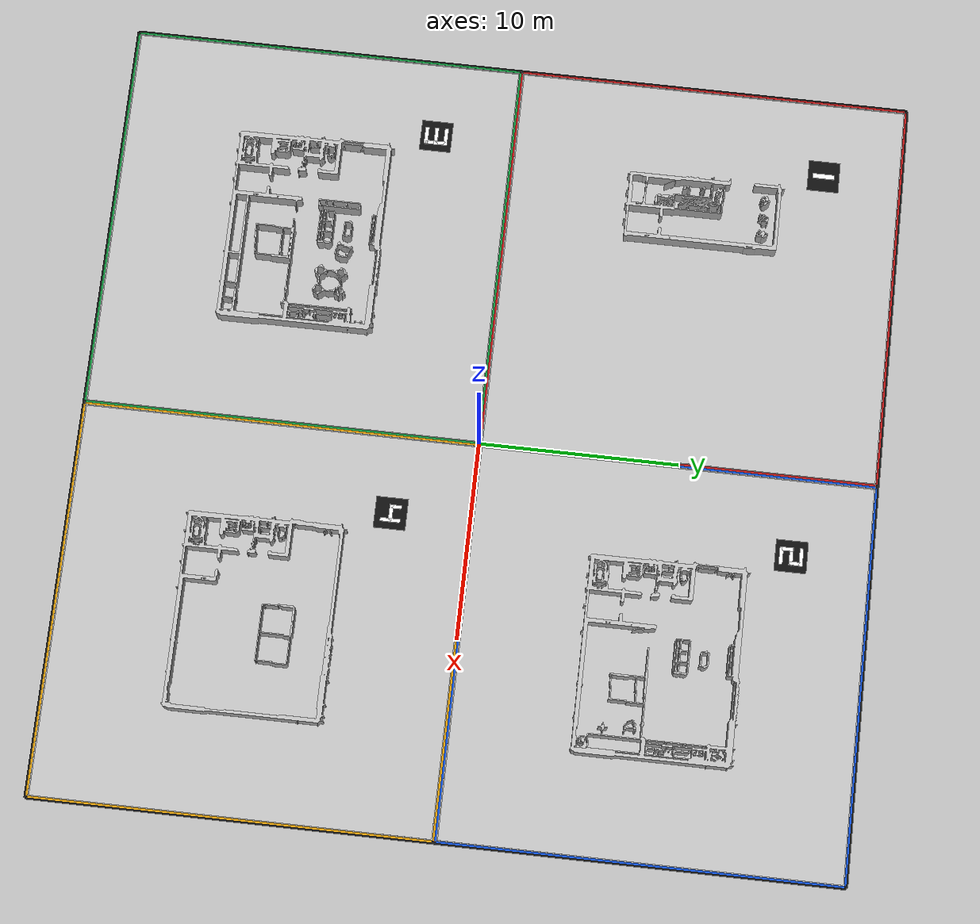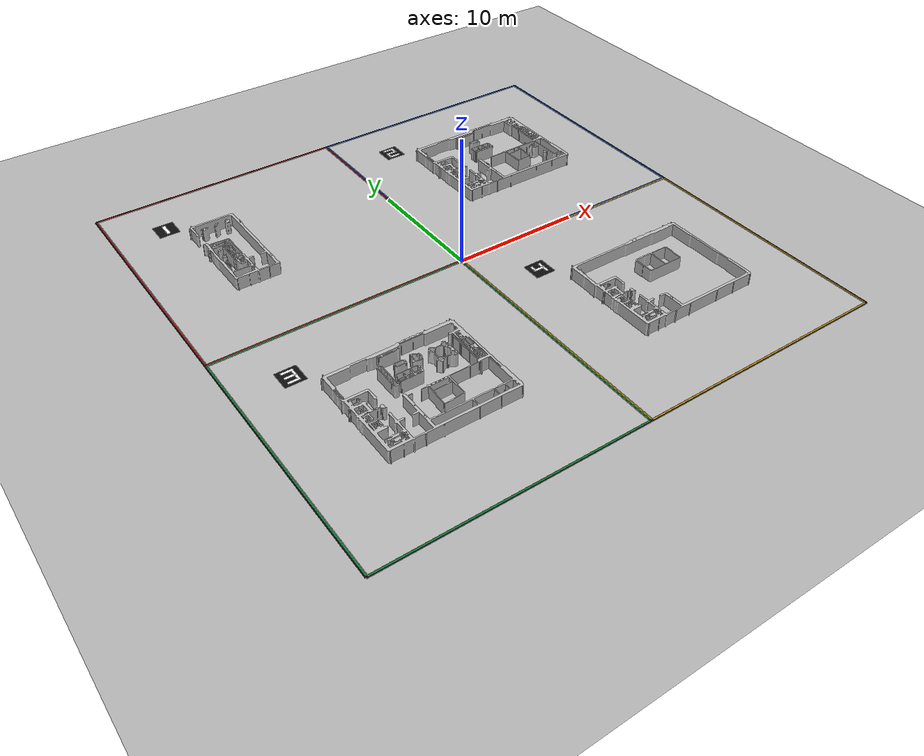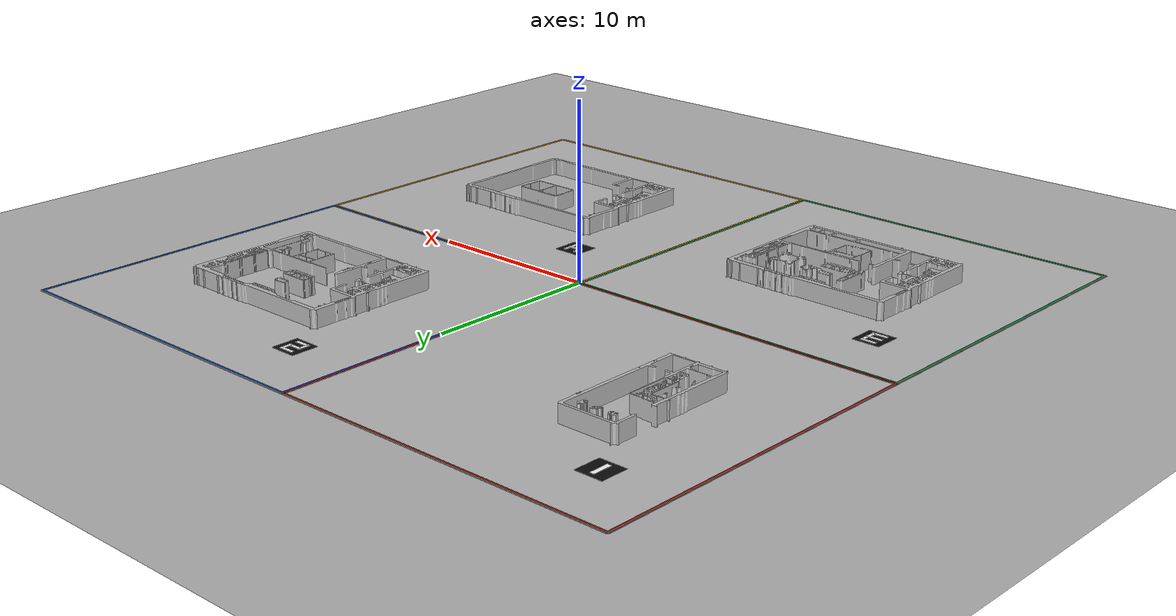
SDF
<?xml version="1.0" ?>
<sdf version="1.6">
  <world name="drawn_model_world">
    <gravity>0 0 -9.81</gravity>
    <physics name="default_physics" type="ode">
      <real_time_update_rate>1000</real_time_update_rate>
      <max_step_size>0.001</max_step_size>
      <real_time_factor>1</real_time_factor>
    </physics>

    <!-- Required by the simulation-only ground-truth localization backend. -->
    <plugin name="gazebo_ros_state" filename="libgazebo_ros_state.so">
      <ros>
        <namespace>/gazebo</namespace>
      </ros>
      <update_rate>50.0</update_rate>
    </plugin>

    <!-- Low-latency camera motion for the Web Gazebo view. The regular
         /gazebo/set_model_state service remains available as a fallback. -->
    <plugin name="topdown_camera_control" filename="libtopdown_camera_control_plugin.so">
      <model_name>topdown_camera</model_name>
      <topic_name>/open_delivery/topdown_camera/pose</topic_name>
    </plugin>

    <light name="sun" type="directional">
      <cast_shadows>true</cast_shadows>
      <pose>0 0 100 0 0 0</pose>
      <diffuse>0.8 0.8 0.8 1</diffuse>
      <specular>0.2 0.2 0.2 1</specular>
      <attenuation>
        <range>1000</range>
        <constant>0.9</constant>
        <linear>0.01</linear>
        <quadratic>0.001</quadratic>
      </attenuation>
      <direction>-0.5 0.1 -0.9</direction>
    </light>

    <model name="ground_plane">
      <static>true</static>
      <link name="link">
        <collision name="collision">
          <geometry>
            <plane>
              <normal>0 0 1</normal>
              <size>100 100</size>
            </plane>
          </geometry>
          <surface>
            <friction>
              <ode>
                <mu>100</mu>
                <mu2>50</mu2>
              </ode>
            </friction>
          </surface>
        </collision>
        <visual name="visual">
          <geometry>
            <plane>
              <normal>0 0 1</normal>
              <size>100 100</size>
            </plane>
          </geometry>
          <material>
            <ambient>0.3 0.3 0.3 1</ambient>
            <diffuse>0.7 0.7 0.7 1</diffuse>
            <specular>0.1 0.1 0.1 1</specular>
          </material>
        </visual>
      </link>
    </model>

    <model name="test_area_outline">
      <static>true</static>
      <link name="outline_link">
        <visual name="zone_1_fill">
          <pose>-10 10 0.003 0 0 0</pose>
          <geometry>
            <box>
              <size>19.7 19.7 0.006</size>
            </box>
          </geometry>
          <material>
            <script>
              <uri>model://test_101/materials/scripts</uri>
              <uri>model://test_101/materials/textures</uri>
              <name>OpenDelivery/Floor/test_101</name>
            </script>
          </material>
        </visual>
        <visual name="zone_2_fill">
          <pose>10 10 0.003 0 0 0</pose>
          <geometry>
            <box>
              <size>19.7 19.7 0.006</size>
            </box>
          </geometry>
          <material>
            <script>
              <uri>model://test_102/materials/scripts</uri>
              <uri>model://test_102/materials/textures</uri>
              <name>OpenDelivery/Floor/test_102</name>
            </script>
          </material>
        </visual>
        <visual name="zone_3_fill">
          <pose>-10 -10 0.003 0 0 0</pose>
          <geometry>
            <box>
              <size>19.7 19.7 0.006</size>
            </box>
          </geometry>
          <material>
            <script>
              <uri>model://test_103/materials/scripts</uri>
              <uri>model://test_103/materials/textures</uri>
              <name>OpenDelivery/Floor/test_103</name>
            </script>
          </material>
        </visual>
        <visual name="zone_4_fill">
          <pose>10 -10 0.003 0 0 0</pose>
          <geometry>
            <box>
              <size>19.7 19.7 0.006</size>
            </box>
          </geometry>
          <material>
            <script>
              <uri>model://test_104/materials/scripts</uri>
              <uri>model://test_104/materials/textures</uri>
              <name>OpenDelivery/Floor/test_104</name>
            </script>
          </material>
        </visual>

        <visual name="zone_1_top_border">
          <pose>-10 19.95 0.012 0 0 0</pose>
          <geometry><box><size>19.8 0.1 0.02</size></box></geometry>
          <material><ambient>0.7 0.08 0.08 1</ambient><diffuse>0.7 0.08 0.08 1</diffuse></material>
        </visual>
        <visual name="zone_1_bottom_border">
          <pose>-10 0.05 0.012 0 0 0</pose>
          <geometry><box><size>19.8 0.1 0.02</size></box></geometry>
          <material><ambient>0.7 0.08 0.08 1</ambient><diffuse>0.7 0.08 0.08 1</diffuse></material>
        </visual>
        <visual name="zone_1_left_border">
          <pose>-19.95 10 0.012 0 0 0</pose>
          <geometry><box><size>0.1 19.8 0.02</size></box></geometry>
          <material><ambient>0.7 0.08 0.08 1</ambient><diffuse>0.7 0.08 0.08 1</diffuse></material>
        </visual>
        <visual name="zone_1_right_border">
          <pose>-0.05 10 0.012 0 0 0</pose>
          <geometry><box><size>0.1 19.8 0.02</size></box></geometry>
          <material><ambient>0.7 0.08 0.08 1</ambient><diffuse>0.7 0.08 0.08 1</diffuse></material>
        </visual>

        <visual name="zone_2_top_border">
          <pose>10 19.95 0.012 0 0 0</pose>
          <geometry><box><size>19.8 0.1 0.02</size></box></geometry>
          <material><ambient>0.05 0.3 0.8 1</ambient><diffuse>0.05 0.3 0.8 1</diffuse></material>
        </visual>
        <visual name="zone_2_bottom_border">
          <pose>10 0.05 0.012 0 0 0</pose>
          <geometry><box><size>19.8 0.1 0.02</size></box></geometry>
          <material><ambient>0.05 0.3 0.8 1</ambient><diffuse>0.05 0.3 0.8 1</diffuse></material>
        </visual>
        <visual name="zone_2_left_border">
          <pose>0.05 10 0.012 0 0 0</pose>
          <geometry><box><size>0.1 19.8 0.02</size></box></geometry>
          <material><ambient>0.05 0.3 0.8 1</ambient><diffuse>0.05 0.3 0.8 1</diffuse></material>
        </visual>
        <visual name="zone_2_right_border">
          <pose>19.95 10 0.012 0 0 0</pose>
          <geometry><box><size>0.1 19.8 0.02</size></box></geometry>
          <material><ambient>0.05 0.3 0.8 1</ambient><diffuse>0.05 0.3 0.8 1</diffuse></material>
        </visual>

        <visual name="zone_3_top_border">
          <pose>-10 -0.05 0.012 0 0 0</pose>
          <geometry><box><size>19.8 0.1 0.02</size></box></geometry>
          <material><ambient>0.05 0.55 0.22 1</ambient><diffuse>0.05 0.55 0.22 1</diffuse></material>
        </visual>
        <visual name="zone_3_bottom_border">
          <pose>-10 -19.95 0.012 0 0 0</pose>
          <geometry><box><size>19.8 0.1 0.02</size></box></geometry>
          <material><ambient>0.05 0.55 0.22 1</ambient><diffuse>0.05 0.55 0.22 1</diffuse></material>
        </visual>
        <visual name="zone_3_left_border">
          <pose>-19.95 -10 0.012 0 0 0</pose>
          <geometry><box><size>0.1 19.8 0.02</size></box></geometry>
          <material><ambient>0.05 0.55 0.22 1</ambient><diffuse>0.05 0.55 0.22 1</diffuse></material>
        </visual>
        <visual name="zone_3_right_border">
          <pose>-0.05 -10 0.012 0 0 0</pose>
          <geometry><box><size>0.1 19.8 0.02</size></box></geometry>
          <material><ambient>0.05 0.55 0.22 1</ambient><diffuse>0.05 0.55 0.22 1</diffuse></material>
        </visual>

        <visual name="zone_4_top_border">
          <pose>10 -0.05 0.012 0 0 0</pose>
          <geometry><box><size>19.8 0.1 0.02</size></box></geometry>
          <material><ambient>0.82 0.58 0.02 1</ambient><diffuse>0.82 0.58 0.02 1</diffuse></material>
        </visual>
        <visual name="zone_4_bottom_border">
          <pose>10 -19.95 0.012 0 0 0</pose>
          <geometry><box><size>19.8 0.1 0.02</size></box></geometry>
          <material><ambient>0.82 0.58 0.02 1</ambient><diffuse>0.82 0.58 0.02 1</diffuse></material>
        </visual>
        <visual name="zone_4_left_border">
          <pose>0.05 -10 0.012 0 0 0</pose>
          <geometry><box><size>0.1 19.8 0.02</size></box></geometry>
          <material><ambient>0.82 0.58 0.02 1</ambient><diffuse>0.82 0.58 0.02 1</diffuse></material>
        </visual>
        <visual name="zone_4_right_border">
          <pose>19.95 -10 0.012 0 0 0</pose>
          <geometry><box><size>0.1 19.8 0.02</size></box></geometry>
          <material><ambient>0.82 0.58 0.02 1</ambient><diffuse>0.82 0.58 0.02 1</diffuse></material>
        </visual>

        <visual name="north_edge">
          <pose>0 20 0.01 0 0 0</pose>
          <geometry>
            <box>
              <size>40 0.15 0.02</size>
            </box>
          </geometry>
          <material>
            <ambient>0.08 0.08 0.08 1</ambient>
            <diffuse>0.08 0.08 0.08 1</diffuse>
          </material>
        </visual>
        <visual name="south_edge">
          <pose>0 -20 0.01 0 0 0</pose>
          <geometry>
            <box>
              <size>40 0.15 0.02</size>
            </box>
          </geometry>
          <material>
            <ambient>0.08 0.08 0.08 1</ambient>
            <diffuse>0.08 0.08 0.08 1</diffuse>
          </material>
        </visual>
        <visual name="east_edge">
          <pose>20 0 0.01 0 0 0</pose>
          <geometry>
            <box>
              <size>0.15 40 0.02</size>
            </box>
          </geometry>
          <material>
            <ambient>0.08 0.08 0.08 1</ambient>
            <diffuse>0.08 0.08 0.08 1</diffuse>
          </material>
        </visual>
        <visual name="west_edge">
          <pose>-20 0 0.01 0 0 0</pose>
          <geometry>
            <box>
              <size>0.15 40 0.02</size>
            </box>
          </geometry>
          <material>
            <ambient>0.08 0.08 0.08 1</ambient>
            <diffuse>0.08 0.08 0.08 1</diffuse>
          </material>
        </visual>
        <visual name="center_x_axis">
          <pose>0 0 0.008 0 0 0</pose>
          <geometry>
            <box>
              <size>40 0.04 0.016</size>
            </box>
          </geometry>
          <material>
            <ambient>0.85 0.2 0.2 1</ambient>
            <diffuse>0.85 0.2 0.2 1</diffuse>
          </material>
        </visual>
        <visual name="center_y_axis">
          <pose>0 0 0.008 0 0 0</pose>
          <geometry>
            <box>
              <size>0.04 40 0.016</size>
            </box>
          </geometry>
          <material>
            <ambient>0.85 0.2 0.2 1</ambient>
            <diffuse>0.85 0.2 0.2 1</diffuse>
          </material>
        </visual>
      </link>
    </model>

    <include>
      <uri>model://test_101</uri>
      <name>test_101</name>
      <pose>-10 10 0 0 0 0</pose>
    </include>
    <include>
      <uri>model://test_102</uri>
      <name>test_102</name>
      <pose>10 10 0 0 0 0</pose>
    </include>
    <include>
      <uri>model://test_103</uri>
      <name>test_103</name>
      <pose>-10 -10 0 0 0 0</pose>
    </include>
    <include>
      <uri>model://test_104</uri>
      <name>test_104</name>
      <pose>10 -10 0 0 0 0</pose>
    </include>

    <model name="label_1">
      <static>true</static>
      <pose>-16 16 0 0 0 0</pose>
      <link name="label_link">
        <visual name="plate">
          <pose>0 0 0.005 0 0 0</pose>
          <geometry>
            <box>
              <size>1.6 1.6 0.01</size>
            </box>
          </geometry>
          <material>
            <ambient>0.05 0.05 0.05 1</ambient>
            <diffuse>0.05 0.05 0.05 1</diffuse>
          </material>
        </visual>
        <visual name="digit">
          <pose>0 0 0.02 0 0 0</pose>
          <geometry>
            <box>
              <size>0.25 1.1 0.02</size>
            </box>
          </geometry>
          <material>
            <ambient>1 1 1 1</ambient>
            <diffuse>1 1 1 1</diffuse>
          </material>
        </visual>
      </link>
    </model>

    <model name="label_2">
      <static>true</static>
      <pose>4 16 0 0 0 0</pose>
      <link name="label_link">
        <visual name="plate">
          <pose>0 0 0.005 0 0 0</pose>
          <geometry>
            <box>
              <size>1.6 1.6 0.01</size>
            </box>
          </geometry>
          <material>
            <ambient>0.05 0.05 0.05 1</ambient>
            <diffuse>0.05 0.05 0.05 1</diffuse>
          </material>
        </visual>
        <visual name="top">
          <pose>0 0.5 0.02 0 0 0</pose>
          <geometry><box><size>0.9 0.18 0.02</size></box></geometry>
          <material><ambient>1 1 1 1</ambient><diffuse>1 1 1 1</diffuse></material>
        </visual>
        <visual name="mid">
          <pose>0 0 0.02 0 0 0</pose>
          <geometry><box><size>0.9 0.18 0.02</size></box></geometry>
          <material><ambient>1 1 1 1</ambient><diffuse>1 1 1 1</diffuse></material>
        </visual>
        <visual name="bottom">
          <pose>0 -0.5 0.02 0 0 0</pose>
          <geometry><box><size>0.9 0.18 0.02</size></box></geometry>
          <material><ambient>1 1 1 1</ambient><diffuse>1 1 1 1</diffuse></material>
        </visual>
        <visual name="upper_right">
          <pose>0.35 0.22 0.02 0 0 0</pose>
          <geometry><box><size>0.18 0.56 0.02</size></box></geometry>
          <material><ambient>1 1 1 1</ambient><diffuse>1 1 1 1</diffuse></material>
        </visual>
        <visual name="lower_left">
          <pose>-0.35 -0.22 0.02 0 0 0</pose>
          <geometry><box><size>0.18 0.56 0.02</size></box></geometry>
          <material><ambient>1 1 1 1</ambient><diffuse>1 1 1 1</diffuse></material>
        </visual>
      </link>
    </model>

    <model name="label_3">
      <static>true</static>
      <pose>-16 -4 0 0 0 0</pose>
      <link name="label_link">
        <visual name="plate">
          <pose>0 0 0.005 0 0 0</pose>
          <geometry>
            <box>
              <size>1.6 1.6 0.01</size>
            </box>
          </geometry>
          <material>
            <ambient>0.05 0.05 0.05 1</ambient>
            <diffuse>0.05 0.05 0.05 1</diffuse>
          </material>
        </visual>
        <visual name="top">
          <pose>0 0.5 0.02 0 0 0</pose>
          <geometry><box><size>0.9 0.18 0.02</size></box></geometry>
          <material><ambient>1 1 1 1</ambient><diffuse>1 1 1 1</diffuse></material>
        </visual>
        <visual name="mid">
          <pose>0 0 0.02 0 0 0</pose>
          <geometry><box><size>0.9 0.18 0.02</size></box></geometry>
          <material><ambient>1 1 1 1</ambient><diffuse>1 1 1 1</diffuse></material>
        </visual>
        <visual name="bottom">
          <pose>0 -0.5 0.02 0 0 0</pose>
          <geometry><box><size>0.9 0.18 0.02</size></box></geometry>
          <material><ambient>1 1 1 1</ambient><diffuse>1 1 1 1</diffuse></material>
        </visual>
        <visual name="upper_right">
          <pose>0.35 0.22 0.02 0 0 0</pose>
          <geometry><box><size>0.18 0.56 0.02</size></box></geometry>
          <material><ambient>1 1 1 1</ambient><diffuse>1 1 1 1</diffuse></material>
        </visual>
        <visual name="lower_right">
          <pose>0.35 -0.22 0.02 0 0 0</pose>
          <geometry><box><size>0.18 0.56 0.02</size></box></geometry>
          <material><ambient>1 1 1 1</ambient><diffuse>1 1 1 1</diffuse></material>
        </visual>
      </link>
    </model>

    <model name="label_4">
      <static>true</static>
      <pose>4 -4 0 0 0 0</pose>
      <link name="label_link">
        <visual name="plate">
          <pose>0 0 0.005 0 0 0</pose>
          <geometry>
            <box>
              <size>1.6 1.6 0.01</size>
            </box>
          </geometry>
          <material>
            <ambient>0.05 0.05 0.05 1</ambient>
            <diffuse>0.05 0.05 0.05 1</diffuse>
          </material>
        </visual>
        <visual name="mid">
          <pose>0 0 0.02 0 0 0</pose>
          <geometry><box><size>0.9 0.18 0.02</size></box></geometry>
          <material><ambient>1 1 1 1</ambient><diffuse>1 1 1 1</diffuse></material>
        </visual>
        <visual name="upper_left">
          <pose>-0.35 0.22 0.02 0 0 0</pose>
          <geometry><box><size>0.18 0.56 0.02</size></box></geometry>
          <material><ambient>1 1 1 1</ambient><diffuse>1 1 1 1</diffuse></material>
        </visual>
        <visual name="upper_right">
          <pose>0.35 0.22 0.02 0 0 0</pose>
          <geometry><box><size>0.18 0.56 0.02</size></box></geometry>
          <material><ambient>1 1 1 1</ambient><diffuse>1 1 1 1</diffuse></material>
        </visual>
        <visual name="lower_right">
          <pose>0.35 -0.22 0.02 0 0 0</pose>
          <geometry><box><size>0.18 0.56 0.02</size></box></geometry>
          <material><ambient>1 1 1 1</ambient><diffuse>1 1 1 1</diffuse></material>
        </visual>
      </link>
    </model>

    <model name="topdown_camera">
      <static>true</static>
      <pose>0 0 32 0 1.57079632679 1.57079632679</pose>
      <link name="topdown_camera_link">
        <sensor name="topdown_rgb_sensor" type="camera">
          <always_on>true</always_on>
          <update_rate>15</update_rate>
          <visualize>false</visualize>
          <camera>
            <horizontal_fov>1.3962634</horizontal_fov>
            <image>
              <width>640</width>
              <height>480</height>
              <format>R8G8B8</format>
            </image>
            <clip>
              <near>0.1</near>
              <far>100</far>
            </clip>
          </camera>
          <plugin name="topdown_camera_controller" filename="libgazebo_ros_camera.so">
            <ros>
              <namespace>drawn_model/topdown_camera</namespace>
              <remapping>topdown_rgb_sensor/image_raw:=image_raw</remapping>
              <remapping>topdown_rgb_sensor/camera_info:=camera_info</remapping>
              <remapping>image_raw:=image_raw</remapping>
              <remapping>camera_info:=camera_info</remapping>
            </ros>
            <frame_name>topdown_camera_link</frame_name>
            <robotNamespace>/drawn_model/topdown_camera</robotNamespace>
            <imageTopicName>image_raw</imageTopicName>
            <cameraInfoTopicName>camera_info</cameraInfoTopicName>
            <frameName>topdown_camera_link</frameName>
          </plugin>
        </sensor>
      </link>
    </model>
  </world>
</sdf>

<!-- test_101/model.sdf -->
<sdf version="1.6">
  <model name="test_101">
    <link name="link">
      <collision name="collision">
        <pose>-6.0 4.95 0 0 0 0</pose>
        <geometry><mesh><uri>model://test_101/map.stl</uri></mesh></geometry>
      </collision>
      <visual name="visual">
        <pose>-6.0 4.95 0 0 0 0</pose>
        <geometry><mesh><uri>model://test_101/map.stl</uri></mesh></geometry>
      </visual>
    </link>
    <static>true</static>
  </model>
</sdf>

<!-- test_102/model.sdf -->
<sdf version="1.6">
  <model name="test_102">
    <link name="link">
      <collision name="collision">
        <pose>-6.0 4.95 0 0 0 0</pose>
        <geometry><mesh><uri>model://test_102/map.stl</uri></mesh></geometry>
      </collision>
      <visual name="visual">
        <pose>-6.0 4.95 0 0 0 0</pose>
        <geometry><mesh><uri>model://test_102/map.stl</uri></mesh></geometry>
      </visual>
    </link>
    <static>true</static>
  </model>
</sdf>

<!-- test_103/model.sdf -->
<sdf version="1.6">
  <model name="test_103">
    <link name="link">
      <collision name="collision">
        <pose>-6.0 4.95 0 0 0 0</pose>
        <geometry><mesh><uri>model://test_103/map.stl</uri></mesh></geometry>
      </collision>
      <visual name="visual">
        <pose>-6.0 4.95 0 0 0 0</pose>
        <geometry><mesh><uri>model://test_103/map.stl</uri></mesh></geometry>
      </visual>
    </link>
    <static>true</static>
  </model>
</sdf>

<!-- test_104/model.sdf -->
<sdf version="1.6">
  <model name="test_104">
    <link name="link">
      <collision name="collision">
        <pose>-6.0 4.95 0 0 0 0</pose>
        <geometry><mesh><uri>model://test_104/map.stl</uri></mesh></geometry>
      </collision>
      <visual name="visual">
        <pose>-6.0 4.95 0 0 0 0</pose>
        <geometry><mesh><uri>model://test_104/map.stl</uri></mesh></geometry>
      </visual>
    </link>
    <static>true</static>
  </model>
</sdf>
